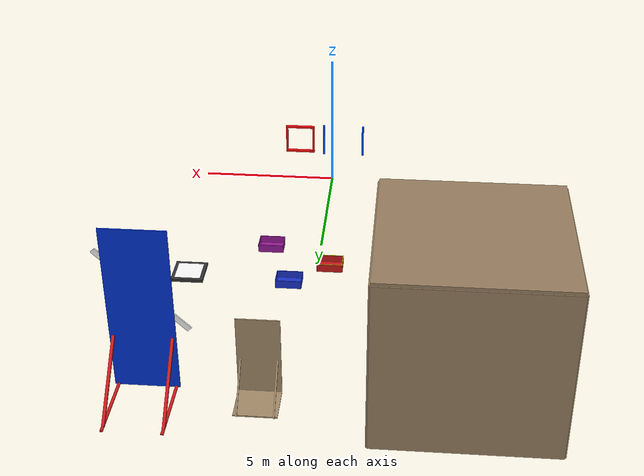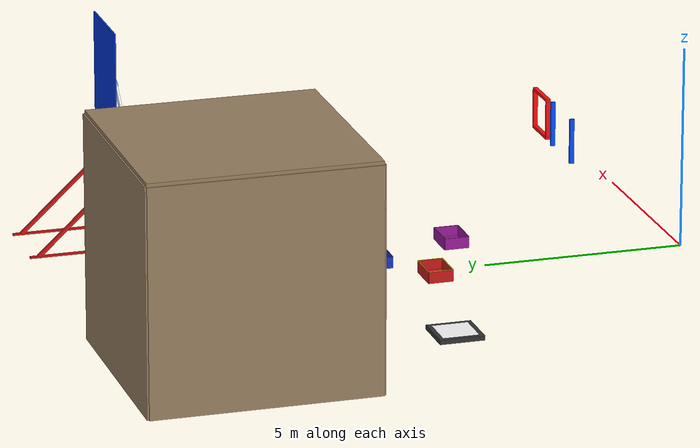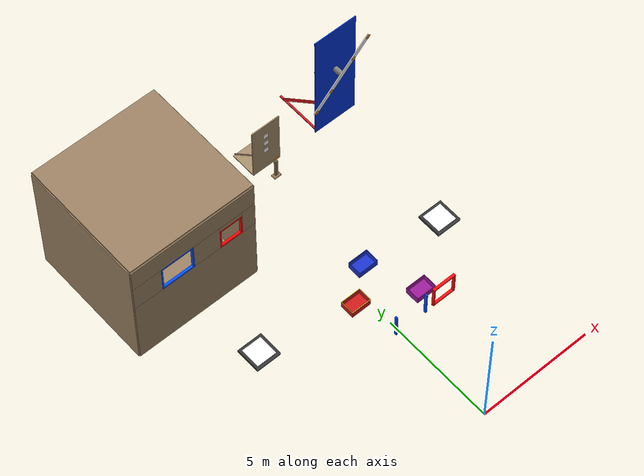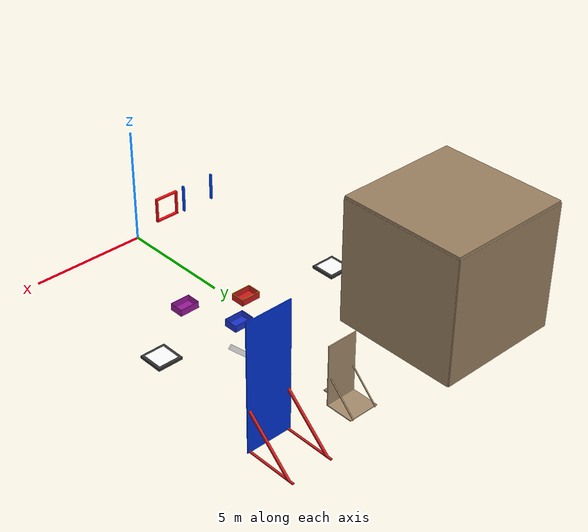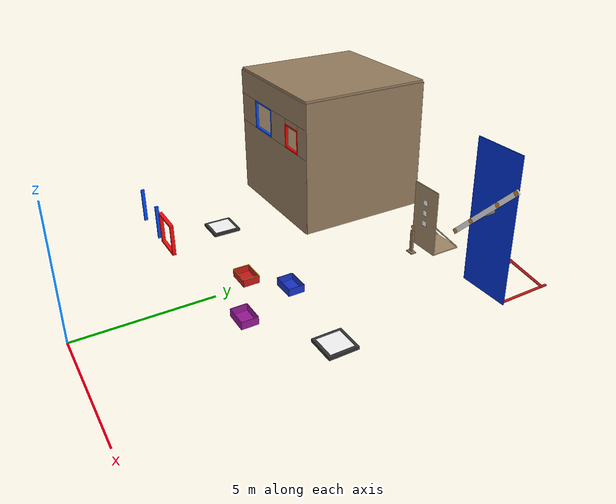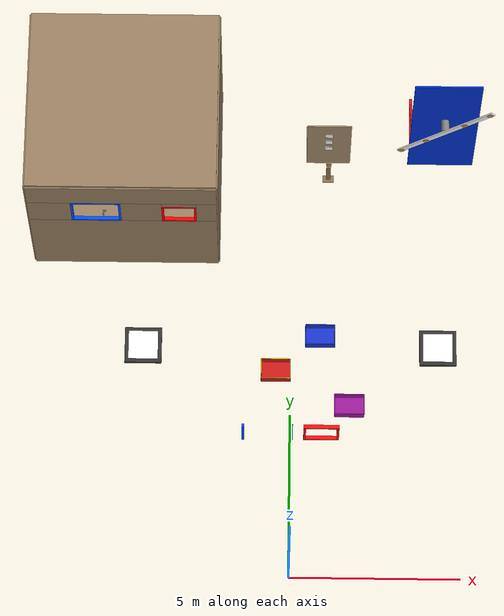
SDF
<sdf version="1.9">
 <world name="imav2026_scaled">
  <model name="room_floor">
   <static>true</static>
   <pose>-4.95 12.65 0.022 0 0 0</pose>
   <link name="link">
    <collision name="col"><geometry><box><size>5.5 5.5 0.044</size></box></geometry></collision>
    <visual name="v">
     <geometry><box><size>5.5 5.5 0.044</size></box></geometry>
     <material>
      <ambient>0.60 0.50 0.38 1</ambient>
      <diffuse>0.60 0.50 0.38 1</diffuse>
      <pbr><metal><roughness>0.8</roughness><metalness>0.0</metalness></metal></pbr>
     </material>
    </visual>
   </link>
  </model>
  <model name="room_N">
   <static>true</static>
   <pose>-4.95 15.4 2.75 0 0 0</pose>
   <link name="link">
    <collision name="col"><geometry><box><size>5.5 0.088 5.5</size></box></geometry></collision>
    <visual name="v">
     <geometry><box><size>5.5 0.088 5.5</size></box></geometry>
     <material>
      <ambient>0.60 0.50 0.38 1</ambient>
      <diffuse>0.60 0.50 0.38 1</diffuse>
      <pbr><metal><roughness>0.8</roughness><metalness>0.0</metalness></metal></pbr>
     </material>
    </visual>
   </link>
  </model>
  <model name="room_W">
   <static>true</static>
   <pose>-7.7 12.65 2.75 0 0 0</pose>
   <link name="link">
    <collision name="col"><geometry><box><size>0.088 5.5 5.5</size></box></geometry></collision>
    <visual name="v">
     <geometry><box><size>0.088 5.5 5.5</size></box></geometry>
     <material>
      <ambient>0.60 0.50 0.38 1</ambient>
      <diffuse>0.60 0.50 0.38 1</diffuse>
      <pbr><metal><roughness>0.8</roughness><metalness>0.0</metalness></metal></pbr>
     </material>
    </visual>
   </link>
  </model>
  <model name="room_E">
   <static>true</static>
   <pose>-2.2 12.65 2.75 0 0 0</pose>
   <link name="link">
    <collision name="col"><geometry><box><size>0.088 5.5 5.5</size></box></geometry></collision>
    <visual name="v">
     <geometry><box><size>0.088 5.5 5.5</size></box></geometry>
     <material>
      <ambient>0.60 0.50 0.38 1</ambient>
      <diffuse>0.60 0.50 0.38 1</diffuse>
      <pbr><metal><roughness>0.8</roughness><metalness>0.0</metalness></metal></pbr>
     </material>
    </visual>
   </link>
  </model>
  <model name="room_ceil">
   <static>true</static>
   <pose>-4.95 12.65 5.544 0 0 0</pose>
   <link name="link">
    <collision name="col"><geometry><box><size>5.5 5.5 0.088</size></box></geometry></collision>
    <visual name="v">
     <geometry><box><size>5.5 5.5 0.088</size></box></geometry>
     <material>
      <ambient>0.60 0.50 0.38 1</ambient>
      <diffuse>0.60 0.50 0.38 1</diffuse>
      <pbr><metal><roughness>0.8</roughness><metalness>0.0</metalness></metal></pbr>
     </material>
    </visual>
   </link>
  </model>
  <model name="room_S_bot">
   <static>true</static>
   <pose>-4.95 9.9 1.617 0 0 0</pose>
   <link name="link">
    <collision name="col"><geometry><box><size>5.5 0.088 3.234</size></box></geometry></collision>
    <visual name="v">
     <geometry><box><size>5.5 0.088 3.234</size></box></geometry>
     <material>
      <ambient>0.60 0.50 0.38 1</ambient>
      <diffuse>0.60 0.50 0.38 1</diffuse>
      <pbr><metal><roughness>0.8</roughness><metalness>0.0</metalness></metal></pbr>
     </material>
    </visual>
   </link>
  </model>
  <model name="room_S_top">
   <static>true</static>
   <pose>-4.95 9.9 4.983 0 0 0</pose>
   <link name="link">
    <collision name="col"><geometry><box><size>5.5 0.088 1.034</size></box></geometry></collision>
    <visual name="v">
     <geometry><box><size>5.5 0.088 1.034</size></box></geometry>
     <material>
      <ambient>0.60 0.50 0.38 1</ambient>
      <diffuse>0.60 0.50 0.38 1</diffuse>
      <pbr><metal><roughness>0.8</roughness><metalness>0.0</metalness></metal></pbr>
     </material>
    </visual>
   </link>
  </model>
  <model name="room_S_seg_L">
   <static>true</static>
   <pose>-7.073 9.9 3.85 0 0 0</pose>
   <link name="link">
    <collision name="col"><geometry><box><size>1.254 0.088 1.232</size></box></geometry></collision>
    <visual name="v">
     <geometry><box><size>1.254 0.088 1.232</size></box></geometry>
     <material>
      <ambient>0.60 0.50 0.38 1</ambient>
      <diffuse>0.60 0.50 0.38 1</diffuse>
      <pbr><metal><roughness>0.8</roughness><metalness>0.0</metalness></metal></pbr>
     </material>
    </visual>
   </link>
  </model>
  <model name="room_S_seg_M">
   <static>true</static>
   <pose>-4.4 9.9 3.85 0 0 0</pose>
   <link name="link">
    <collision name="col"><geometry><box><size>1.188 0.088 1.232</size></box></geometry></collision>
    <visual name="v">
     <geometry><box><size>1.188 0.088 1.232</size></box></geometry>
     <material>
      <ambient>0.60 0.50 0.38 1</ambient>
      <diffuse>0.60 0.50 0.38 1</diffuse>
      <pbr><metal><roughness>0.8</roughness><metalness>0.0</metalness></metal></pbr>
     </material>
    </visual>
   </link>
  </model>
  <model name="room_S_seg_R">
   <static>true</static>
   <pose>-2.497 9.9 3.85 0 0 0</pose>
   <link name="link">
    <collision name="col"><geometry><box><size>0.594 0.088 1.232</size></box></geometry></collision>
    <visual name="v">
     <geometry><box><size>0.594 0.088 1.232</size></box></geometry>
     <material>
      <ambient>0.60 0.50 0.38 1</ambient>
      <diffuse>0.60 0.50 0.38 1</diffuse>
      <pbr><metal><roughness>0.8</roughness><metalness>0.0</metalness></metal></pbr>
     </material>
    </visual>
   </link>
  </model>
  <model name="room_S_seg_above_red">
   <static>true</static>
   <pose>-3.3 9.9 4.356 0 0 0</pose>
   <link name="link">
    <collision name="col"><geometry><box><size>1.012 0.088 0.22</size></box></geometry></collision>
    <visual name="v">
     <geometry><box><size>1.012 0.088 0.22</size></box></geometry>
     <material>
      <ambient>0.60 0.50 0.38 1</ambient>
      <diffuse>0.60 0.50 0.38 1</diffuse>
      <pbr><metal><roughness>0.8</roughness><metalness>0.0</metalness></metal></pbr>
     </material>
    </visual>
   </link>
  </model>
  <model name="room_blue_top">
   <static>true</static>
   <pose>-5.72 9.9 4.433 0 0 0</pose>
   <link name="link">
    <collision name="col"><geometry><box><size>1.452 0.11 0.066</size></box></geometry></collision>
    <visual name="v">
     <geometry><box><size>1.452 0.11 0.066</size></box></geometry>
     <material>
      <ambient>0.0 0.3 1.0 1</ambient>
      <diffuse>0.0 0.3 1.0 1</diffuse>
      <pbr><metal><roughness>0.5</roughness><metalness>0.0</metalness></metal></pbr>
     </material>
    </visual>
   </link>
  </model>
  <model name="room_blue_bot">
   <static>true</static>
   <pose>-5.72 9.9 3.267 0 0 0</pose>
   <link name="link">
    <collision name="col"><geometry><box><size>1.452 0.11 0.066</size></box></geometry></collision>
    <visual name="v">
     <geometry><box><size>1.452 0.11 0.066</size></box></geometry>
     <material>
      <ambient>0.0 0.3 1.0 1</ambient>
      <diffuse>0.0 0.3 1.0 1</diffuse>
      <pbr><metal><roughness>0.5</roughness><metalness>0.0</metalness></metal></pbr>
     </material>
    </visual>
   </link>
  </model>
  <model name="room_blue_L">
   <static>true</static>
   <pose>-6.413 9.9 3.85 0 0 0</pose>
   <link name="link">
    <collision name="col"><geometry><box><size>0.066 0.11 1.1</size></box></geometry></collision>
    <visual name="v">
     <geometry><box><size>0.066 0.11 1.1</size></box></geometry>
     <material>
      <ambient>0.0 0.3 1.0 1</ambient>
      <diffuse>0.0 0.3 1.0 1</diffuse>
      <pbr><metal><roughness>0.5</roughness><metalness>0.0</metalness></metal></pbr>
     </material>
    </visual>
   </link>
  </model>
  <model name="room_blue_R">
   <static>true</static>
   <pose>-5.027 9.9 3.85 0 0 0</pose>
   <link name="link">
    <collision name="col"><geometry><box><size>0.066 0.11 1.1</size></box></geometry></collision>
    <visual name="v">
     <geometry><box><size>0.066 0.11 1.1</size></box></geometry>
     <material>
      <ambient>0.0 0.3 1.0 1</ambient>
      <diffuse>0.0 0.3 1.0 1</diffuse>
      <pbr><metal><roughness>0.5</roughness><metalness>0.0</metalness></metal></pbr>
     </material>
    </visual>
   </link>
  </model>
  <model name="room_red_top">
   <static>true</static>
   <pose>-3.3 9.9 4.213 0 0 0</pose>
   <link name="link">
    <collision name="col"><geometry><box><size>1.012 0.11 0.066</size></box></geometry></collision>
    <visual name="v">
     <geometry><box><size>1.012 0.11 0.066</size></box></geometry>
     <material>
      <ambient>1.0 0.0 0.0 1</ambient>
      <diffuse>1.0 0.0 0.0 1</diffuse>
      <pbr><metal><roughness>0.5</roughness><metalness>0.0</metalness></metal></pbr>
     </material>
    </visual>
   </link>
  </model>
  <model name="room_red_bot">
   <static>true</static>
   <pose>-3.3 9.9 3.267 0 0 0</pose>
   <link name="link">
    <collision name="col"><geometry><box><size>1.012 0.11 0.066</size></box></geometry></collision>
    <visual name="v">
     <geometry><box><size>1.012 0.11 0.066</size></box></geometry>
     <material>
      <ambient>1.0 0.0 0.0 1</ambient>
      <diffuse>1.0 0.0 0.0 1</diffuse>
      <pbr><metal><roughness>0.5</roughness><metalness>0.0</metalness></metal></pbr>
     </material>
    </visual>
   </link>
  </model>
  <model name="room_red_L">
   <static>true</static>
   <pose>-3.773 9.9 3.74 0 0 0</pose>
   <link name="link">
    <collision name="col"><geometry><box><size>0.066 0.11 0.88</size></box></geometry></collision>
    <visual name="v">
     <geometry><box><size>0.066 0.11 0.88</size></box></geometry>
     <material>
      <ambient>1.0 0.0 0.0 1</ambient>
      <diffuse>1.0 0.0 0.0 1</diffuse>
      <pbr><metal><roughness>0.5</roughness><metalness>0.0</metalness></metal></pbr>
     </material>
    </visual>
   </link>
  </model>
  <model name="room_red_R">
   <static>true</static>
   <pose>-2.827 9.9 3.74 0 0 0</pose>
   <link name="link">
    <collision name="col"><geometry><box><size>0.066 0.11 0.88</size></box></geometry></collision>
    <visual name="v">
     <geometry><box><size>0.066 0.11 0.88</size></box></geometry>
     <material>
      <ambient>1.0 0.0 0.0 1</ambient>
      <diffuse>1.0 0.0 0.0 1</diffuse>
      <pbr><metal><roughness>0.5</roughness><metalness>0.0</metalness></metal></pbr>
     </material>
    </visual>
   </link>
  </model>
  <model name="obs_wall_blue_L">
   <static>true</static>
   <pose>-1.353 3.3 3.41 0 0 0</pose>
   <link name="link">
    <collision name="col"><geometry><box><size>0.066 0.11 1.1</size></box></geometry></collision>
    <visual name="v">
     <geometry><box><size>0.066 0.11 1.1</size></box></geometry>
     <material>
      <ambient>0.0 0.3 1.0 1</ambient>
      <diffuse>0.0 0.3 1.0 1</diffuse>
      <pbr><metal><roughness>0.5</roughness><metalness>0.0</metalness></metal></pbr>
     </material>
    </visual>
   </link>
  </model>
  <model name="obs_wall_blue_R">
   <static>true</static>
   <pose>0.033 3.3 3.41 0 0 0</pose>
   <link name="link">
    <collision name="col"><geometry><box><size>0.066 0.11 1.1</size></box></geometry></collision>
    <visual name="v">
     <geometry><box><size>0.066 0.11 1.1</size></box></geometry>
     <material>
      <ambient>0.0 0.3 1.0 1</ambient>
      <diffuse>0.0 0.3 1.0 1</diffuse>
      <pbr><metal><roughness>0.5</roughness><metalness>0.0</metalness></metal></pbr>
     </material>
    </visual>
   </link>
  </model>
  <model name="obs_wall_red_top">
   <static>true</static>
   <pose>0.88 3.3 3.883 0 0 0</pose>
   <link name="link">
    <collision name="col"><geometry><box><size>1.012 0.11 0.066</size></box></geometry></collision>
    <visual name="v">
     <geometry><box><size>1.012 0.11 0.066</size></box></geometry>
     <material>
      <ambient>1.0 0.05 0.05 1</ambient>
      <diffuse>1.0 0.05 0.05 1</diffuse>
      <pbr><metal><roughness>0.5</roughness><metalness>0.0</metalness></metal></pbr>
     </material>
    </visual>
   </link>
  </model>
  <model name="obs_wall_red_bot">
   <static>true</static>
   <pose>0.88 3.3 2.937 0 0 0</pose>
   <link name="link">
    <collision name="col"><geometry><box><size>1.012 0.11 0.066</size></box></geometry></collision>
    <visual name="v">
     <geometry><box><size>1.012 0.11 0.066</size></box></geometry>
     <material>
      <ambient>1.0 0.05 0.05 1</ambient>
      <diffuse>1.0 0.05 0.05 1</diffuse>
      <pbr><metal><roughness>0.5</roughness><metalness>0.0</metalness></metal></pbr>
     </material>
    </visual>
   </link>
  </model>
  <model name="obs_wall_red_L">
   <static>true</static>
   <pose>0.407 3.3 3.41 0 0 0</pose>
   <link name="link">
    <collision name="col"><geometry><box><size>0.066 0.11 0.88</size></box></geometry></collision>
    <visual name="v">
     <geometry><box><size>0.066 0.11 0.88</size></box></geometry>
     <material>
      <ambient>1.0 0.05 0.05 1</ambient>
      <diffuse>1.0 0.05 0.05 1</diffuse>
      <pbr><metal><roughness>0.5</roughness><metalness>0.0</metalness></metal></pbr>
     </material>
    </visual>
   </link>
  </model>
  <model name="obs_wall_red_R">
   <static>true</static>
   <pose>1.353 3.3 3.41 0 0 0</pose>
   <link name="link">
    <collision name="col"><geometry><box><size>0.066 0.11 0.88</size></box></geometry></collision>
    <visual name="v">
     <geometry><box><size>0.066 0.11 0.88</size></box></geometry>
     <material>
      <ambient>1.0 0.05 0.05 1</ambient>
      <diffuse>1.0 0.05 0.05 1</diffuse>
      <pbr><metal><roughness>0.5</roughness><metalness>0.0</metalness></metal></pbr>
     </material>
    </visual>
   </link>
  </model>
  <model name="box_blue_floor">
   <static>true</static>
   <pose>0.8844 7.48 0.022 0 0 0</pose>
   <link name="link">
    <collision name="col"><geometry><box><size>0.8712 0.6116 0.022</size></box></geometry></collision>
    <visual name="v">
     <geometry><box><size>0.8712 0.6116 0.022</size></box></geometry>
     <material>
      <ambient>0.1 0.2 0.8 1</ambient>
      <diffuse>0.1 0.2 0.8 1</diffuse>
      <pbr><metal><roughness>0.5</roughness><metalness>0.0</metalness></metal></pbr>
     </material>
    </visual>
   </link>
  </model>
  <model name="box_blue_wallN">
   <static>true</static>
   <pose>0.8844 7.7858 0.1452 0 0 0</pose>
   <link name="link">
    <collision name="col"><geometry><box><size>0.8712 0.022 0.2904</size></box></geometry></collision>
    <visual name="v">
     <geometry><box><size>0.8712 0.022 0.2904</size></box></geometry>
     <material>
      <ambient>0.1 0.2 0.8 1</ambient>
      <diffuse>0.1 0.2 0.8 1</diffuse>
      <pbr><metal><roughness>0.5</roughness><metalness>0.0</metalness></metal></pbr>
     </material>
    </visual>
   </link>
  </model>
  <model name="box_blue_wallS">
   <static>true</static>
   <pose>0.8844 7.1742 0.1452 0 0 0</pose>
   <link name="link">
    <collision name="col"><geometry><box><size>0.8712 0.022 0.2904</size></box></geometry></collision>
    <visual name="v">
     <geometry><box><size>0.8712 0.022 0.2904</size></box></geometry>
     <material>
      <ambient>0.1 0.2 0.8 1</ambient>
      <diffuse>0.1 0.2 0.8 1</diffuse>
      <pbr><metal><roughness>0.5</roughness><metalness>0.0</metalness></metal></pbr>
     </material>
    </visual>
   </link>
  </model>
  <model name="box_blue_wallE">
   <static>true</static>
   <pose>1.32 7.48 0.1452 0 0 0</pose>
   <link name="link">
    <collision name="col"><geometry><box><size>0.022 0.6116 0.2904</size></box></geometry></collision>
    <visual name="v">
     <geometry><box><size>0.022 0.6116 0.2904</size></box></geometry>
     <material>
      <ambient>0.1 0.2 0.8 1</ambient>
      <diffuse>0.1 0.2 0.8 1</diffuse>
      <pbr><metal><roughness>0.5</roughness><metalness>0.0</metalness></metal></pbr>
     </material>
    </visual>
   </link>
  </model>
  <model name="box_blue_wallW">
   <static>true</static>
   <pose>0.4488 7.48 0.1452 0 0 0</pose>
   <link name="link">
    <collision name="col"><geometry><box><size>0.022 0.6116 0.2904</size></box></geometry></collision>
    <visual name="v">
     <geometry><box><size>0.022 0.6116 0.2904</size></box></geometry>
     <material>
      <ambient>0.1 0.2 0.8 1</ambient>
      <diffuse>0.1 0.2 0.8 1</diffuse>
      <pbr><metal><roughness>0.5</roughness><metalness>0.0</metalness></metal></pbr>
     </material>
    </visual>
   </link>
  </model>
  <model name="box_red_floor">
   <static>true</static>
   <pose>-0.4356 6.38 0.022 0 0 0</pose>
   <link name="link">
    <collision name="col"><geometry><box><size>0.8712 0.6116 0.022</size></box></geometry></collision>
    <visual name="v">
     <geometry><box><size>0.8712 0.6116 0.022</size></box></geometry>
     <material>
      <ambient>0.8 0.1 0.1 1</ambient>
      <diffuse>0.8 0.1 0.1 1</diffuse>
      <pbr><metal><roughness>0.5</roughness><metalness>0.0</metalness></metal></pbr>
     </material>
    </visual>
   </link>
  </model>
  <model name="box_red_wallN">
   <static>true</static>
   <pose>-0.4356 6.6858 0.1452 0 0 0</pose>
   <link name="link">
    <collision name="v_col"><geometry><box><size>0.8712 0.022 0.2904</size></box></geometry></collision>
    <visual name="v">
     <geometry><box><size>0.8712 0.022 0.2904</size></box></geometry>
     <material>
      <ambient>0.8 0.1 0.1 1</ambient>
      <diffuse>0.8 0.1 0.1 1</diffuse>
      <pbr><metal><roughness>0.5</roughness><metalness>0.0</metalness></metal></pbr>
     </material>
    </visual>
    <collision name="border_col">
     <pose>0.0 0.0 0.1452 0 0 0</pose>
     <geometry><box><size>0.8712 0.022 0.011</size></box></geometry>
    </collision>
    <visual name="border">
     <pose>0.0 0.0 0.1452 0 0 0</pose>
     <geometry><box><size>0.8712 0.022 0.011</size></box></geometry>
     <material>
      <ambient>0.9 0.9 0.1 1</ambient>
      <diffuse>0.9 0.9 0.1 1</diffuse>
      <emissive>0.3 0.3 0.0 1</emissive>
      <pbr><metal><roughness>0.5</roughness><metalness>0.0</metalness></metal></pbr>
     </material>
    </visual>
   </link>
  </model>
  <model name="box_red_wallS">
   <static>true</static>
   <pose>-0.4356 6.0742 0.1452 0 0 0</pose>
   <link name="link">
    <collision name="v_col"><geometry><box><size>0.8712 0.022 0.2904</size></box></geometry></collision>
    <visual name="v">
     <geometry><box><size>0.8712 0.022 0.2904</size></box></geometry>
     <material>
      <ambient>0.8 0.1 0.1 1</ambient>
      <diffuse>0.8 0.1 0.1 1</diffuse>
      <pbr><metal><roughness>0.5</roughness><metalness>0.0</metalness></metal></pbr>
     </material>
    </visual>
    <collision name="border_col">
     <pose>0.0 0.0 0.1452 0 0 0</pose>
     <geometry><box><size>0.8712 0.022 0.011</size></box></geometry>
    </collision>
    <visual name="border">
     <pose>0.0 0.0 0.1452 0 0 0</pose>
     <geometry><box><size>0.8712 0.022 0.011</size></box></geometry>
     <material>
      <ambient>0.9 0.9 0.1 1</ambient>
      <diffuse>0.9 0.9 0.1 1</diffuse>
      <emissive>0.3 0.3 0.0 1</emissive>
      <pbr><metal><roughness>0.5</roughness><metalness>0.0</metalness></metal></pbr>
     </material>
    </visual>
   </link>
  </model>
  <model name="box_red_wallE">
   <static>true</static>
   <pose>0.0 6.38 0.1452 0 0 0</pose>
   <link name="link">
    <collision name="v_col"><geometry><box><size>0.022 0.6116 0.2904</size></box></geometry></collision>
    <visual name="v">
     <geometry><box><size>0.022 0.6116 0.2904</size></box></geometry>
     <material>
      <ambient>0.8 0.1 0.1 1</ambient>
      <diffuse>0.8 0.1 0.1 1</diffuse>
      <pbr><metal><roughness>0.5</roughness><metalness>0.0</metalness></metal></pbr>
     </material>
    </visual>
    <collision name="border_col">
     <pose>0.0 0.0 0.1452 0 0 0</pose>
     <geometry><box><size>0.022 0.6116 0.011</size></box></geometry>
    </collision>
    <visual name="border">
     <pose>0.0 0.0 0.1452 0 0 0</pose>
     <geometry><box><size>0.022 0.6116 0.011</size></box></geometry>
     <material>
      <ambient>0.9 0.9 0.1 1</ambient>
      <diffuse>0.9 0.9 0.1 1</diffuse>
      <emissive>0.3 0.3 0.0 1</emissive>
      <pbr><metal><roughness>0.5</roughness><metalness>0.0</metalness></metal></pbr>
     </material>
    </visual>
   </link>
  </model>
  <model name="box_red_wallW">
   <static>true</static>
   <pose>-0.8712 6.38 0.1452 0 0 0</pose>
   <link name="link">
    <collision name="v_col"><geometry><box><size>0.022 0.6116 0.2904</size></box></geometry></collision>
    <visual name="v">
     <geometry><box><size>0.022 0.6116 0.2904</size></box></geometry>
     <material>
      <ambient>0.8 0.1 0.1 1</ambient>
      <diffuse>0.8 0.1 0.1 1</diffuse>
      <pbr><metal><roughness>0.5</roughness><metalness>0.0</metalness></metal></pbr>
     </material>
    </visual>
    <collision name="border_col">
     <pose>0.0 0.0 0.1452 0 0 0</pose>
     <geometry><box><size>0.022 0.6116 0.011</size></box></geometry>
    </collision>
    <visual name="border">
     <pose>0.0 0.0 0.1452 0 0 0</pose>
     <geometry><box><size>0.022 0.6116 0.011</size></box></geometry>
     <material>
      <ambient>0.9 0.9 0.1 1</ambient>
      <diffuse>0.9 0.9 0.1 1</diffuse>
      <emissive>0.3 0.3 0.0 1</emissive>
      <pbr><metal><roughness>0.5</roughness><metalness>0.0</metalness></metal></pbr>
     </material>
    </visual>
   </link>
  </model>
  <model name="box_purple_floor">
   <static>true</static>
   <pose>1.7556 5.28 0.022 0 0 0</pose>
   <link name="link">
    <collision name="col"><geometry><box><size>0.8712 0.6116 0.022</size></box></geometry></collision>
    <visual name="v">
     <geometry><box><size>0.8712 0.6116 0.022</size></box></geometry>
     <material>
      <ambient>0.6 0.1 0.6 1</ambient>
      <diffuse>0.6 0.1 0.6 1</diffuse>
      <pbr><metal><roughness>0.5</roughness><metalness>0.0</metalness></metal></pbr>
     </material>
    </visual>
   </link>
  </model>
  <model name="box_purple_wallN">
   <static>true</static>
   <pose>1.7556 5.5858 0.1452 0 0 0</pose>
   <link name="link">
    <collision name="col"><geometry><box><size>0.8712 0.022 0.2904</size></box></geometry></collision>
    <visual name="v">
     <geometry><box><size>0.8712 0.022 0.2904</size></box></geometry>
     <material>
      <ambient>0.6 0.1 0.6 1</ambient>
      <diffuse>0.6 0.1 0.6 1</diffuse>
      <pbr><metal><roughness>0.5</roughness><metalness>0.0</metalness></metal></pbr>
     </material>
    </visual>
   </link>
  </model>
  <model name="box_purple_wallS">
   <static>true</static>
   <pose>1.7556 4.9742 0.1452 0 0 0</pose>
   <link name="link">
    <collision name="col"><geometry><box><size>0.8712 0.022 0.2904</size></box></geometry></collision>
    <visual name="v">
     <geometry><box><size>0.8712 0.022 0.2904</size></box></geometry>
     <material>
      <ambient>0.6 0.1 0.6 1</ambient>
      <diffuse>0.6 0.1 0.6 1</diffuse>
      <pbr><metal><roughness>0.5</roughness><metalness>0.0</metalness></metal></pbr>
     </material>
    </visual>
   </link>
  </model>
  <model name="box_purple_wallE">
   <static>true</static>
   <pose>2.1912 5.28 0.1452 0 0 0</pose>
   <link name="link">
    <collision name="col"><geometry><box><size>0.022 0.6116 0.2904</size></box></geometry></collision>
    <visual name="v">
     <geometry><box><size>0.022 0.6116 0.2904</size></box></geometry>
     <material>
      <ambient>0.6 0.1 0.6 1</ambient>
      <diffuse>0.6 0.1 0.6 1</diffuse>
      <pbr><metal><roughness>0.5</roughness><metalness>0.0</metalness></metal></pbr>
     </material>
    </visual>
   </link>
  </model>
  <model name="box_purple_wallW">
   <static>true</static>
   <pose>1.32 5.28 0.1452 0 0 0</pose>
   <link name="link">
    <collision name="col"><geometry><box><size>0.022 0.6116 0.2904</size></box></geometry></collision>
    <visual name="v">
     <geometry><box><size>0.022 0.6116 0.2904</size></box></geometry>
     <material>
      <ambient>0.6 0.1 0.6 1</ambient>
      <diffuse>0.6 0.1 0.6 1</diffuse>
      <pbr><metal><roughness>0.5</roughness><metalness>0.0</metalness></metal></pbr>
     </material>
    </visual>
   </link>
  </model>
  <model name="turbine_assembly">
   <static>true</static>
   <pose>4.51 13.2 0.0 0 0 0</pose>
   <link name="link">
    <visual name="backboard">
     <pose>0.0 0.0 2.75 0 0 0</pose>
     <geometry><box><size>1.98 0.044 5.5</size></box></geometry>
     <material><ambient>0.0 0.2 0.85 1</ambient><diffuse>0.0 0.2 0.85 1</diffuse></material>
    </visual>
    <collision name="backboard_col">
     <pose>0.0 0.0 2.75 0 0 0</pose>
     <geometry><box><size>1.98 0.044 5.5</size></box></geometry>
    </collision>
    <collision name="support_base_L_col">
     <pose>-0.88 1.0813 0.022 0 0 0</pose>
     <geometry><box><size>0.088 2.1626 0.044</size></box></geometry>
    </collision>
    <visual name="support_base_L">
     <pose>-0.88 1.0813 0.022 0 0 0</pose>
     <geometry><box><size>0.088 2.1626 0.044</size></box></geometry>
     <material><ambient>0.8 0.1 0.1 1</ambient><diffuse>0.8 0.1 0.1 1</diffuse></material>
    </visual>
    <collision name="support_base_R_col">
     <pose>0.88 1.0813 0.022 0 0 0</pose>
     <geometry><box><size>0.088 2.1626 0.044</size></box></geometry>
    </collision>
    <visual name="support_base_R">
     <pose>0.88 1.0813 0.022 0 0 0</pose>
     <geometry><box><size>0.088 2.1626 0.044</size></box></geometry>
     <material><ambient>0.8 0.1 0.1 1</ambient><diffuse>0.8 0.1 0.1 1</diffuse></material>
    </visual>
    <collision name="support_diag_L_col">
     <pose>-0.88 0.979 0.913 0.8254 0 0</pose>
     <geometry><box><size>0.088 0.088 2.64</size></box></geometry>
    </collision>
    <visual name="support_diag_L">
     <pose>-0.88 0.979 0.913 0.8254 0 0</pose>
     <geometry><box><size>0.088 0.088 2.64</size></box></geometry>
     <material><ambient>0.8 0.1 0.1 1</ambient><diffuse>0.8 0.1 0.1 1</diffuse></material>
    </visual>
    <collision name="support_diag_R_col">
     <pose>0.88 0.979 0.913 0.8254 0 0</pose>
     <geometry><box><size>0.088 0.088 2.64</size></box></geometry>
    </collision>
    <visual name="support_diag_R">
     <pose>0.88 0.979 0.913 0.8254 0 0</pose>
     <geometry><box><size>0.088 0.088 2.64</size></box></geometry>
     <material><ambient>0.8 0.1 0.1 1</ambient><diffuse>0.8 0.1 0.1 1</diffuse></material>
    </visual>
    <collision name="hub_col">
     <pose>0.0 -0.1969 3.19 1.5708 0 0</pose>
     <geometry><cylinder><radius>0.121</radius><length>0.3498</length></cylinder></geometry>
    </collision>
    <visual name="hub">
     <pose>0.0 -0.1969 3.19 1.5708 0 0</pose>
     <geometry><cylinder><radius>0.121</radius><length>0.3498</length></cylinder></geometry>
     <material><ambient>0.5 0.5 0.5 1</ambient><diffuse>0.5 0.5 0.5 1</diffuse></material>
    </visual>
    <visual name="blade">
     <pose>0.0 -0.3938 3.19 0 0.7854 0</pose>
     <geometry><box><size>0.176 0.044 3.74</size></box></geometry>
     <material><ambient>0.97 0.97 0.97 1</ambient><diffuse>0.97 0.97 0.97 1</diffuse></material>
    </visual>
    <collision name="blade_col">
     <pose>0.0 -0.3938 3.19 0 -0.7854 0</pose>
     <geometry><box><size>0.176 0.044 1.98</size></box></geometry>
    </collision>
    <collision name="copper_disc_1_col">
     <pose>0.5434 -0.4224 3.7334 1.5708 -0.7854 0</pose>
     <geometry><cylinder><radius>0.088</radius><length>0.0132</length></cylinder></geometry>
    </collision>
    <visual name="copper_disc_1">
     <pose>0.5434 -0.4224 3.7334 1.5708 -0.7854 0</pose>
     <geometry><cylinder><radius>0.088</radius><length>0.0132</length></cylinder></geometry>
     <material><ambient>0.85 0.55 0.20 1</ambient><diffuse>0.85 0.55 0.20 1</diffuse></material>
    </visual>
    <collision name="copper_disc_2_col">
     <pose>1.2445 -0.4224 4.4345 1.5708 -0.7854 0</pose>
     <geometry><cylinder><radius>0.088</radius><length>0.0132</length></cylinder></geometry>
    </collision>
    <visual name="copper_disc_2">
     <pose>1.2445 -0.4224 4.4345 1.5708 -0.7854 0</pose>
     <geometry><cylinder><radius>0.088</radius><length>0.0132</length></cylinder></geometry>
     <material><ambient>0.85 0.55 0.20 1</ambient><diffuse>0.85 0.55 0.20 1</diffuse></material>
    </visual>
    <collision name="copper_disc_3_col">
     <pose>-0.5434 -0.4224 2.6466 1.5708 -0.7854 0</pose>
     <geometry><cylinder><radius>0.088</radius><length>0.0132</length></cylinder></geometry>
    </collision>
    <visual name="copper_disc_3">
     <pose>-0.5434 -0.4224 2.6466 1.5708 -0.7854 0</pose>
     <geometry><cylinder><radius>0.088</radius><length>0.0132</length></cylinder></geometry>
     <material><ambient>0.85 0.55 0.20 1</ambient><diffuse>0.85 0.55 0.20 1</diffuse></material>
    </visual>
    <collision name="copper_disc_4_col">
     <pose>-1.2445 -0.4224 1.9455 1.5708 -0.7854 0</pose>
     <geometry><cylinder><radius>0.088</radius><length>0.0132</length></cylinder></geometry>
    </collision>
    <visual name="copper_disc_4">
     <pose>-1.2445 -0.4224 1.9455 1.5708 -0.7854 0</pose>
     <geometry><cylinder><radius>0.088</radius><length>0.0132</length></cylinder></geometry>
     <material><ambient>0.85 0.55 0.20 1</ambient><diffuse>0.85 0.55 0.20 1</diffuse></material>
    </visual>
   </link>
  </model>
  <model name="ring_board_assembly">
   <static>true</static>
   <pose>1.1 13.2 0.0 0 0 0</pose>
   <link name="link">
    <collision name="col">
     <pose>0.0 0.022 1.32 0 0 0</pose>
     <geometry><box><size>1.32 0.044 2.64</size></box></geometry>
    </collision>
    <visual name="board_wood">
     <pose>0.0 0.022 1.32 0 0 0</pose>
     <geometry><box><size>1.32 0.044 2.64</size></box></geometry>
     <material>
      <ambient>0.65 0.55 0.42 1</ambient>
      <diffuse>0.65 0.55 0.42 1</diffuse>
      <pbr><metal><roughness>0.8</roughness><metalness>0.0</metalness></metal></pbr>
     </material>
    </visual>
    <collision name="rear_base_col">
     <pose>0.0 0.6193 0.022 0 0 0</pose>
     <geometry><box><size>1.32 1.1506 0.044</size></box></geometry>
    </collision>
    <visual name="rear_base">
     <pose>0.0 0.6193 0.022 0 0 0</pose>
     <geometry><box><size>1.32 1.1506 0.044</size></box></geometry>
     <material><ambient>0.65 0.55 0.42 1</ambient><diffuse>0.65 0.55 0.42 1</diffuse></material>
    </visual>
    <collision name="strut_L_col">
     <pose>-0.55 0.6193 0.6193 0.7854 0 0</pose>
     <geometry><box><size>0.044 0.044 1.716</size></box></geometry>
    </collision>
    <visual name="strut_L">
     <pose>-0.55 0.6193 0.6193 0.7854 0 0</pose>
     <geometry><box><size>0.044 0.044 1.716</size></box></geometry>
     <material><ambient>0.65 0.55 0.42 1</ambient><diffuse>0.65 0.55 0.42 1</diffuse></material>
    </visual>
    <collision name="strut_R_col">
     <pose>0.55 0.6193 0.6193 0.7854 0 0</pose>
     <geometry><box><size>0.044 0.044 1.716</size></box></geometry>
    </collision>
    <visual name="strut_R">
     <pose>0.55 0.6193 0.6193 0.7854 0 0</pose>
     <geometry><box><size>0.044 0.044 1.716</size></box></geometry>
     <material><ambient>0.65 0.55 0.42 1</ambient><diffuse>0.65 0.55 0.42 1</diffuse></material>
    </visual>
    <collision name="pedestal_base_col">
     <pose>0.0 -0.55 0.022 0 0 0</pose>
     <geometry><box><size>0.33 0.22 0.044</size></box></geometry>
    </collision>
    <visual name="pedestal_base">
     <pose>0.0 -0.55 0.022 0 0 0</pose>
     <geometry><box><size>0.33 0.22 0.044</size></box></geometry>
     <material><ambient>0.55 0.45 0.33 1</ambient><diffuse>0.55 0.45 0.33 1</diffuse></material>
    </visual>
    <collision name="front_post_col">
     <pose>0.0 -0.55 0.517 0 0 0</pose>
     <geometry><box><size>0.132 0.088 0.88</size></box></geometry>
    </collision>
    <visual name="front_post">
     <pose>0.0 -0.55 0.517 0 0 0</pose>
     <geometry><box><size>0.132 0.088 0.88</size></box></geometry>
     <material><ambient>0.55 0.45 0.33 1</ambient><diffuse>0.55 0.45 0.33 1</diffuse></material>
    </visual>
    <collision name="ring_pin_col">
     <pose>0.0 -0.55 0.9834 0 0 0</pose>
     <geometry><cylinder><radius>0.011</radius><length>0.055</length></cylinder></geometry>
    </collision>
    <visual name="ring_pin">
     <pose>0.0 -0.55 0.9834 0 0 0</pose>
     <geometry><cylinder><radius>0.011</radius><length>0.055</length></cylinder></geometry>
     <material><ambient>0.8 0.8 0.8 1</ambient><diffuse>0.8 0.8 0.8 1</diffuse></material>
    </visual>
    <collision name="copper_ring_col">
     <pose>0.0 -0.55 1.1 1.5708 0 0</pose>
     <geometry><cylinder><radius>0.088</radius><length>0.0132</length></cylinder></geometry>
    </collision>
    <visual name="copper_ring">
     <pose>0.0 -0.55 1.1 1.5708 0 0</pose>
     <geometry><cylinder><radius>0.088</radius><length>0.0132</length></cylinder></geometry>
     <material><ambient>0.85 0.55 0.20 1</ambient><diffuse>0.85 0.55 0.20 1</diffuse></material>
    </visual>
    <collision name="aruco_id4_col">
     <pose>0.0 -0.0044 1.1 0 0 0</pose>
     <geometry><box><size>0.22 0.0022 0.22</size></box></geometry>
    </collision>
    <visual name="aruco_id4">
     <pose>0.0 -0.0044 1.1 0 0 0</pose>
     <geometry><box><size>0.22 0.0022 0.22</size></box></geometry>
     <material>
      <diffuse>1.0 1.0 1.0 1.0</diffuse>
      <pbr>
       <metal>
        <albedo_map>model://materials/textures/aruco_marker_4.jpg</albedo_map>
        <roughness>0.5</roughness>
       </metal>
      </pbr>
     </material>
    </visual>
    <collision name="aruco_id5_col">
     <pose>0.0 -0.0044 1.54 0 0 0</pose>
     <geometry><box><size>0.22 0.0022 0.22</size></box></geometry>
    </collision>
    <visual name="aruco_id5">
     <pose>0.0 -0.0044 1.54 0 0 0</pose>
     <geometry><box><size>0.22 0.0022 0.22</size></box></geometry>
     <material>
      <diffuse>1.0 1.0 1.0 1.0</diffuse>
      <pbr>
       <metal>
        <albedo_map>model://materials/textures/aruco_marker_5.jpg</albedo_map>
        <roughness>0.5</roughness>
       </metal>
      </pbr>
     </material>
    </visual>
    <collision name="aruco_id6_col">
     <pose>0.0 -0.0044 1.98 0 0 0</pose>
     <geometry><box><size>0.22 0.0022 0.22</size></box></geometry>
    </collision>
    <visual name="aruco_id6">
     <pose>0.0 -0.0044 1.98 0 0 0</pose>
     <geometry><box><size>0.22 0.0022 0.22</size></box></geometry>
     <material>
      <diffuse>1.0 1.0 1.0 1.0</diffuse>
      <pbr>
       <metal>
        <albedo_map>model://materials/textures/aruco_marker_6.jpg</albedo_map>
        <roughness>0.5</roughness>
       </metal>
      </pbr>
     </material>
    </visual>
   </link>
  </model>
  <model name="platform_1">
   <static>true</static>
   <pose>-4.4 7.15 0.055 0 0 0</pose>
   <link name="link">
    <collision name="col"><geometry><box><size>1.1 1.1 0.11</size></box></geometry></collision>
    <visual name="v_base">
     <geometry><box><size>1.1 1.1 0.11</size></box></geometry>
     <material><ambient>0.20 0.20 0.20 1</ambient><diffuse>0.20 0.20 0.20 1</diffuse></material>
    </visual>
    <collision name="aruco_id0_col">
     <pose>0.0 0.0 0.0572 0 0 1.5708</pose>
     <geometry><box><size>0.88 0.88 0.0022</size></box></geometry>
    </collision>
    <visual name="aruco_id0">
     <pose>0.0 0.0 0.0572 0 0 1.5708</pose>
     <geometry><box><size>0.88 0.88 0.0022</size></box></geometry>
     <material>
      <diffuse>1.0 1.0 1.0 1.0</diffuse>
      <pbr>
       <metal>
        <albedo_map>model://materials/textures/aruco_marker_2.jpg</albedo_map>
        <roughness>0.5</roughness>
        <metalness>0.0</metalness>
       </metal>
      </pbr>
     </material>
    </visual>
   </link>
  </model>
  <model name="platform_2">
   <static>true</static>
   <pose>4.4 7.15 0.055 0 0 3.1416</pose>
   <link name="link">
    <collision name="col"><geometry><box><size>1.1 1.1 0.11</size></box></geometry></collision>
    <visual name="v_base">
     <geometry><box><size>1.1 1.1 0.11</size></box></geometry>
     <material><ambient>0.20 0.20 0.20 1</ambient><diffuse>0.20 0.20 0.20 1</diffuse></material>
    </visual>
    <collision name="aruco_id0_col">
     <pose>0.0 0.0 0.0572 0 0 1.5708</pose>
     <geometry><box><size>0.88 0.88 0.0022</size></box></geometry>
    </collision>
    <visual name="aruco_id0">
     <pose>0.0 0.0 0.0572 0 0 1.5708</pose>
     <geometry><box><size>0.88 0.88 0.0022</size></box></geometry>
     <material>
      <diffuse>1.0 1.0 1.0 1.0</diffuse>
      <pbr>
       <metal>
        <albedo_map>model://materials/textures/aruco_marker_3.jpg</albedo_map>
        <roughness>0.5</roughness>
        <metalness>0.0</metalness>
       </metal>
      </pbr>
     </material>
    </visual>
   </link>
  </model>
  <include>
   <name>baby_doll_1</name>
   <pose>-3.96 13.64 0.044 0 0 -0.5</pose>
   <uri>model://models/MODERN_DOLL_FAMILY</uri>
  </include>
  <include>
   <name>baby_doll_2</name>
   <pose>-5.72 11.44 0.044 0 0 1.2</pose>
   <uri>model://models/MODERN_DOLL_FAMILY</uri>
  </include>
  <include>
   <name>baby_doll_3</name>
   <pose>-7.26 11.0 0.044 0 0 1.2</pose>
   <uri>model://models/MODERN_DOLL_FAMILY</uri>
  </include>
 </world>
</sdf>
